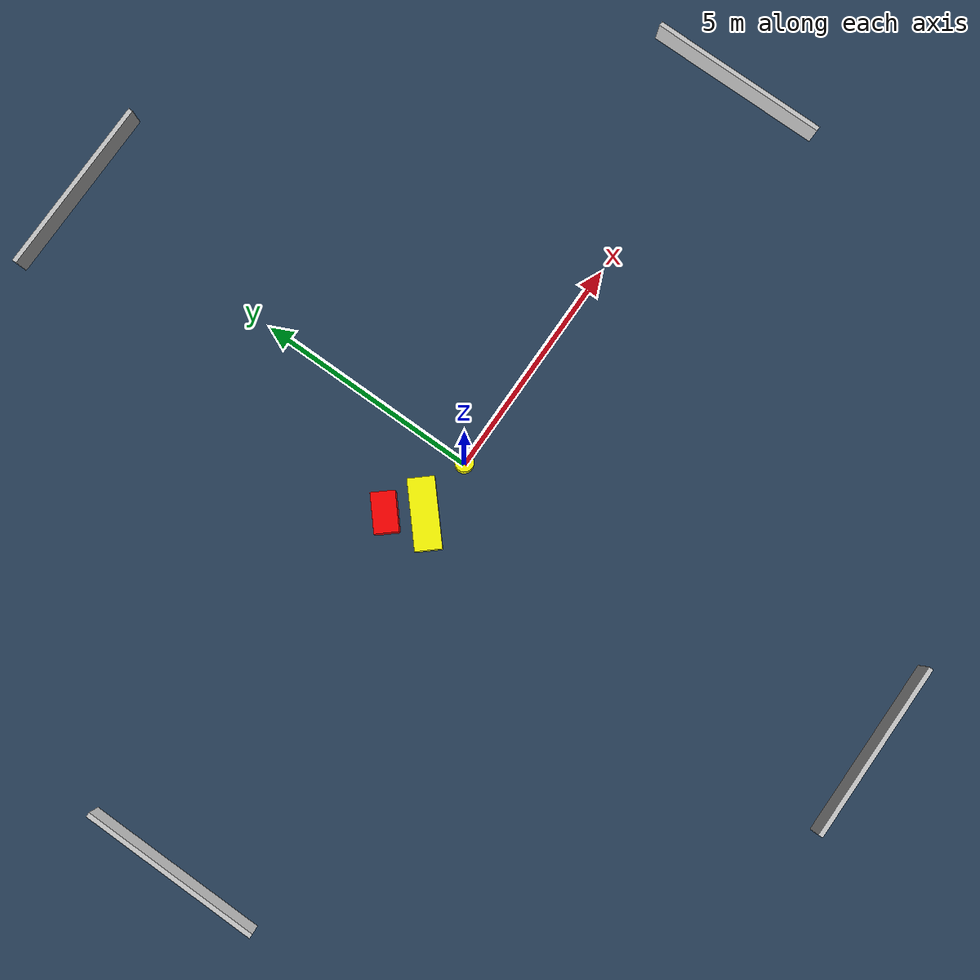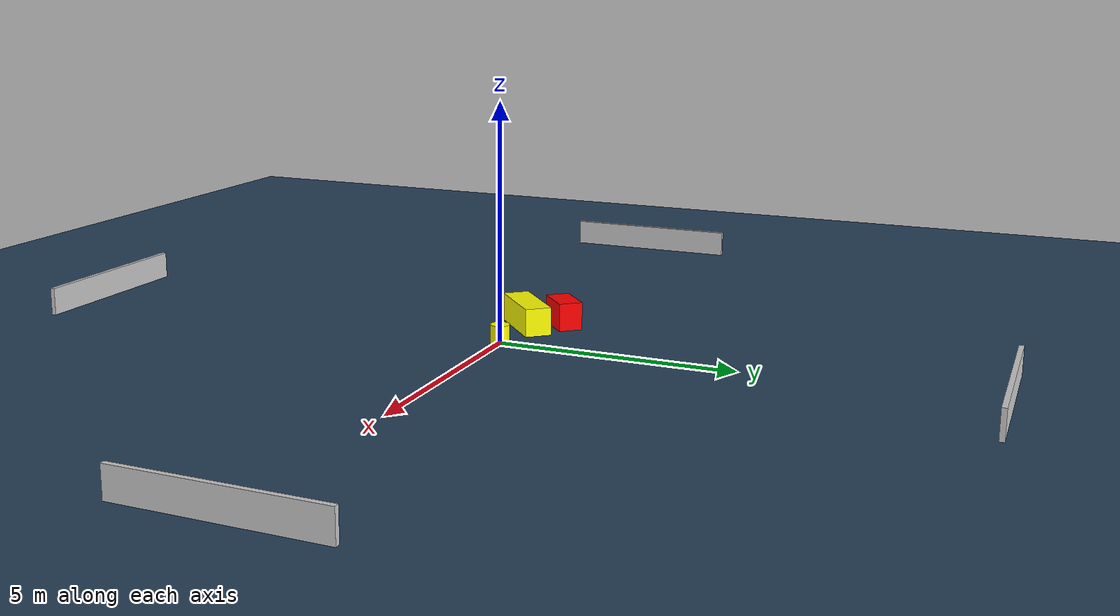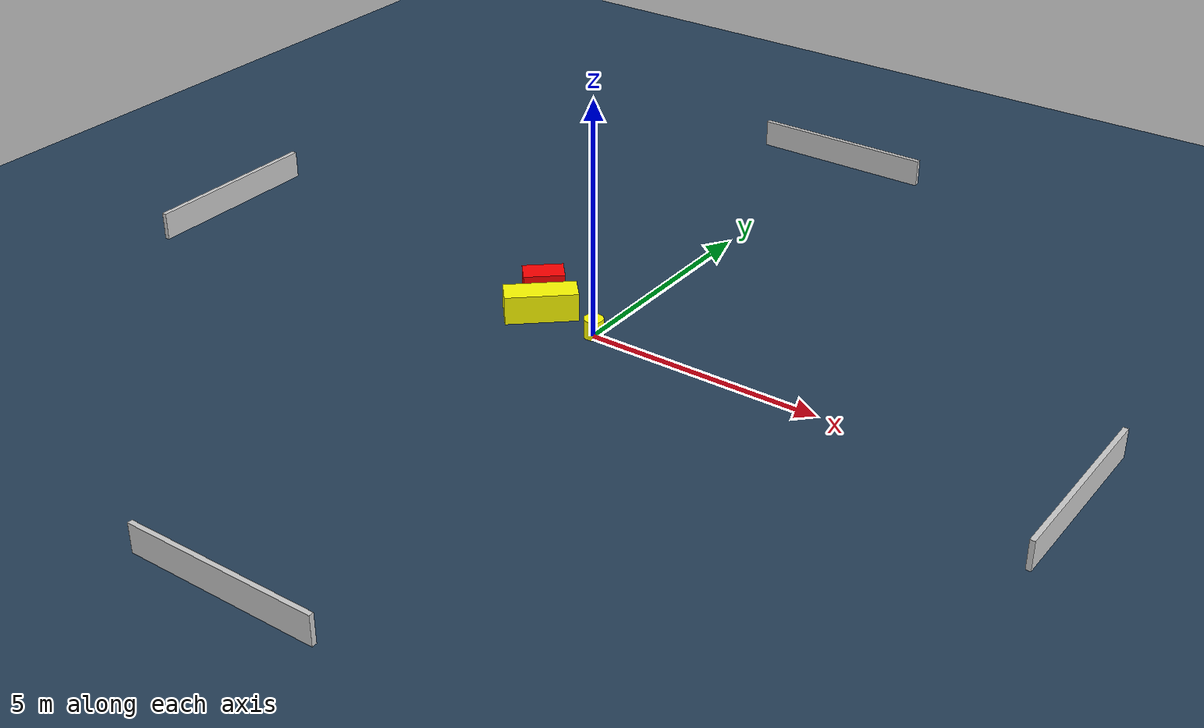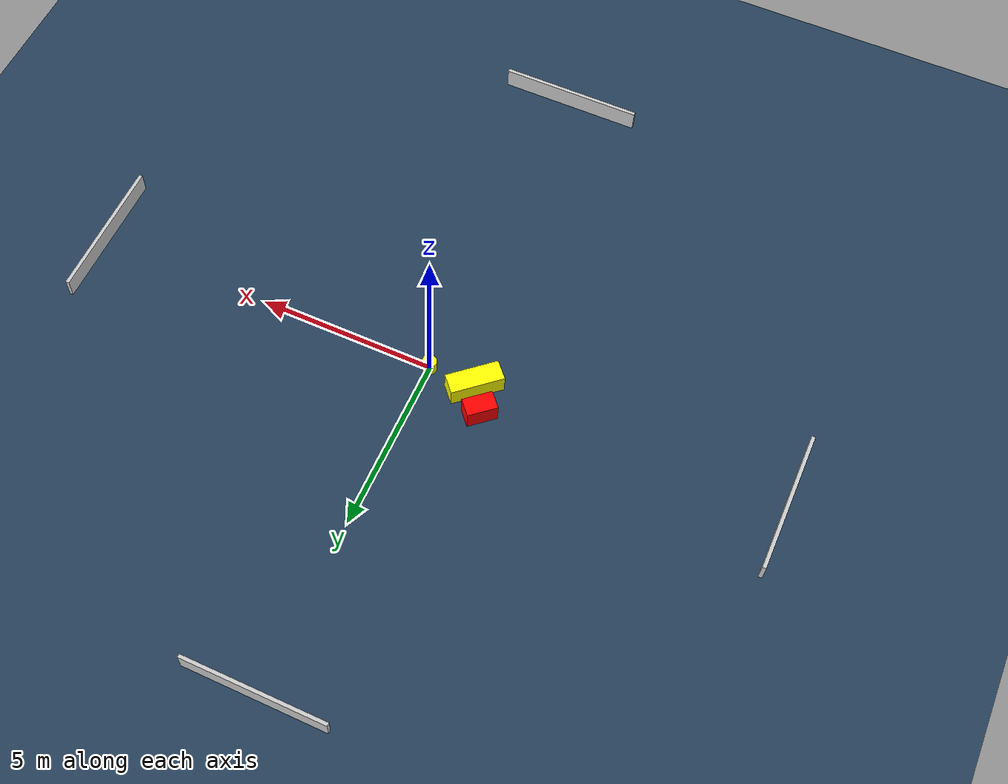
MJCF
<?xml version="1.0" ?>
<mujoco model="generated_environment">
  <option timestep="0.01" integrator="RK4" cone="elliptic"/>
  <default>
    <geom density="1"/>
  </default>
  <asset>
    <texture builtin="gradient" height="3072" name="skybox" rgb1="0.3 0.5 0.7" rgb2="0 0 0" type="skybox" width="512"/>
    <texture builtin="checker" height="300" name="groundplane" rgb1="0.2 0.3 0.4" rgb2="0.1 0.2 0.3" type="2d" width="300"/>
    <material name="groundplane" reflectance="0.2" texrepeat="5 5" texture="groundplane"/>
  </asset>
  <worldbody>
    <light dir="0 0 -1" directional="true" pos="0 0 1.5"/>
    <geom condim="3" friction="0.5 0.005 0.001" material="groundplane" name="floor" pos="0 0 0" size="0 0 0.05" type="plane"/>
    <body name="walls">
      <geom name="wall_1" condim="4" pos="-10.0 0.0 0.3" rgba="0.800000011920929 0.800000011920929 0.800000011920929 1.0" size="0.05 2.0 0.3" type="box"/>
      <geom name="wall_2" condim="4" pos="10.0 0.0 0.3" rgba="0.800000011920929 0.800000011920929 0.800000011920929 1.0" size="0.05 2.0 0.3" type="box"/>
      <geom name="wall_3" condim="4" pos="0.0 -10.0 0.3" rgba="0.800000011920929 0.800000011920929 0.800000011920929 1.0" size="2.0 0.05 0.3" type="box"/>
      <geom name="wall_4" condim="4" pos="0.0 10.0 0.3" rgba="0.800000011920929 0.800000011920929 0.800000011920929 1.0" size="2.0 0.05 0.3" type="box"/>
    </body>
    <body name="robot">
      <joint name="joint_x" type="slide" pos="0 0 0" axis="1 0 0"/>
      <joint name="joint_y" type="slide" pos="0 0 0" axis="0 1 0"/>
      <geom name="robot" type="cylinder" pos="0.0 0.0 0.2" size="0.2 0.2 0.0" mass="5.0" friction="1.0 0.005 0.0001" condim="4" rgba="1.0 1.0 0.0 1.0"/>
    </body>
    <body name="obstacle_1_movable">
      <geom name="obstacle_1_movable" condim="4" pos="-1.3336928932359644 0.04173652072028107 0.3" euler="0 0 221.6776640479282" friction="0.0 0.005 0.001" rgba="1.0 1.0 0.0 1.0" size="0.7445708803019835 0.28524318616391664 0.3" type="box" mass="0.1"/>
      <joint type="free"/>
    </body>
    <body name="obstacle_2_static">
      <geom name="obstacle_2_static" condim="4" pos="-1.7778153875432157 0.7205844154295085 0.3" euler="0 0 311.24171207778465" friction="0.0 0.005 0.001" rgba="1.0 0.0 0.0 1.0" size="0.2579743941193278 0.4243152835913269 0.3" type="box"/>
    </body>
  </worldbody>
  <actuator>
    <motor name="actuator_x" joint="joint_x" gear="1" ctrlrange="-1 1"/>
    <motor name="actuator_y" joint="joint_y" gear="1" ctrlrange="-1 1"/>
  </actuator>
</mujoco>
